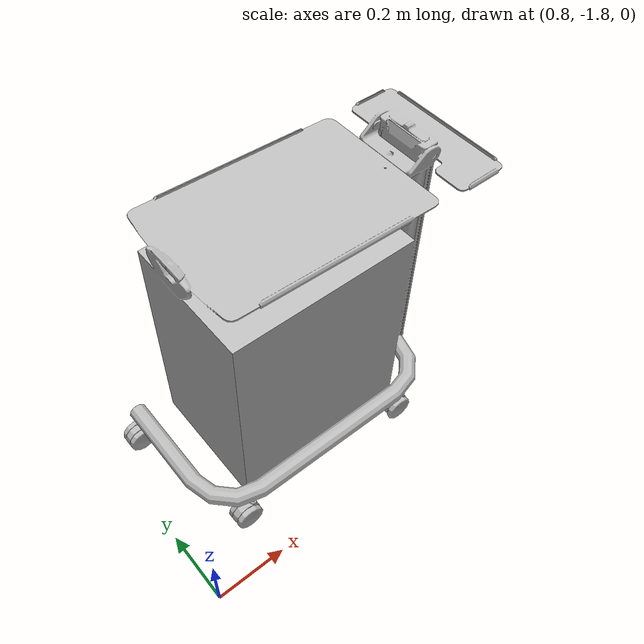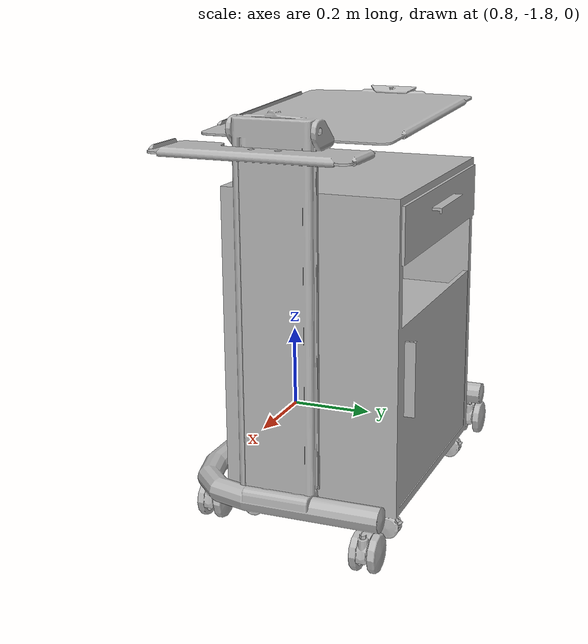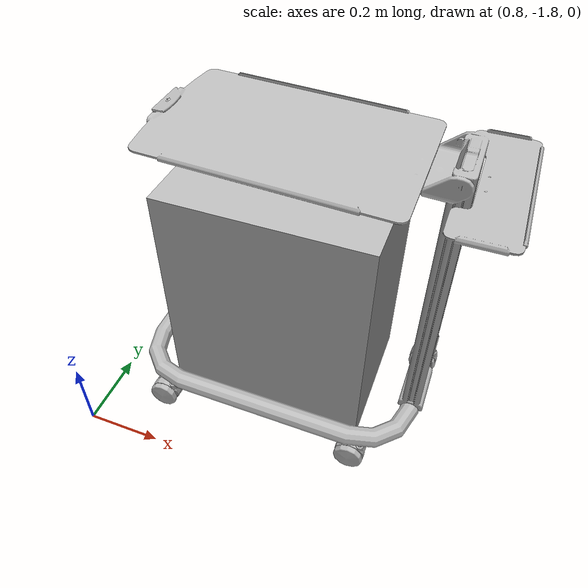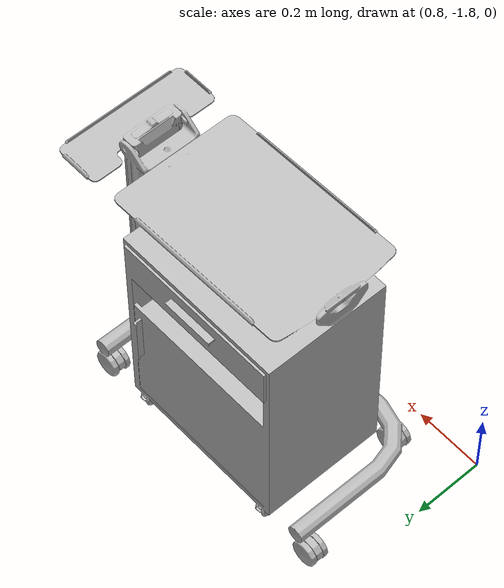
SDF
<?xml version='1.0'?>
<sdf version='1.6'>
  <model name='service_cart'>
    <pose frame=''>1.32 -1.48 0.30 0 0 3.1415</pose>
    <link name='body'>
      <pose frame=''>0 0 0 0 0 0</pose>
      <visual name='body_visual'>
        <pose frame=''>0 0 0 0 0 0</pose>
        <geometry>
          <mesh>
            <uri>model://service_cart/meshes/service_cart.dae</uri>
            <scale>0.01 0.01 0.01</scale>
          </mesh>
        </geometry>
        <meta>
          <layer>1</layer>
        </meta>
      </visual>
      <collision name='body_collision'>
        <geometry>
          <mesh>
            <uri>model://service_cart/meshes/service_cart.dae</uri>
            <scale>0.01 0.01 0.01</scale>
          </mesh>
        </geometry>
        <pose frame=''>0 0 0 0 0 0</pose>
      </collision>
    </link>
    <static>1</static>
  </model>
</sdf>
